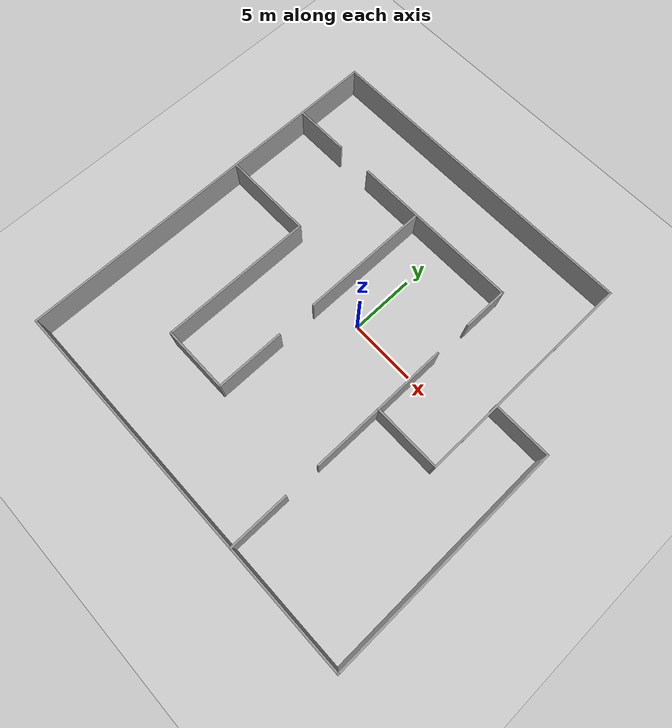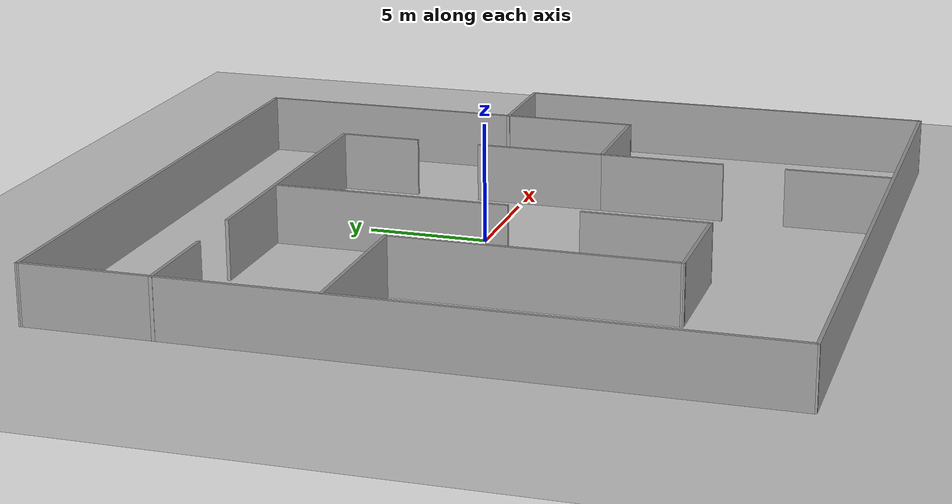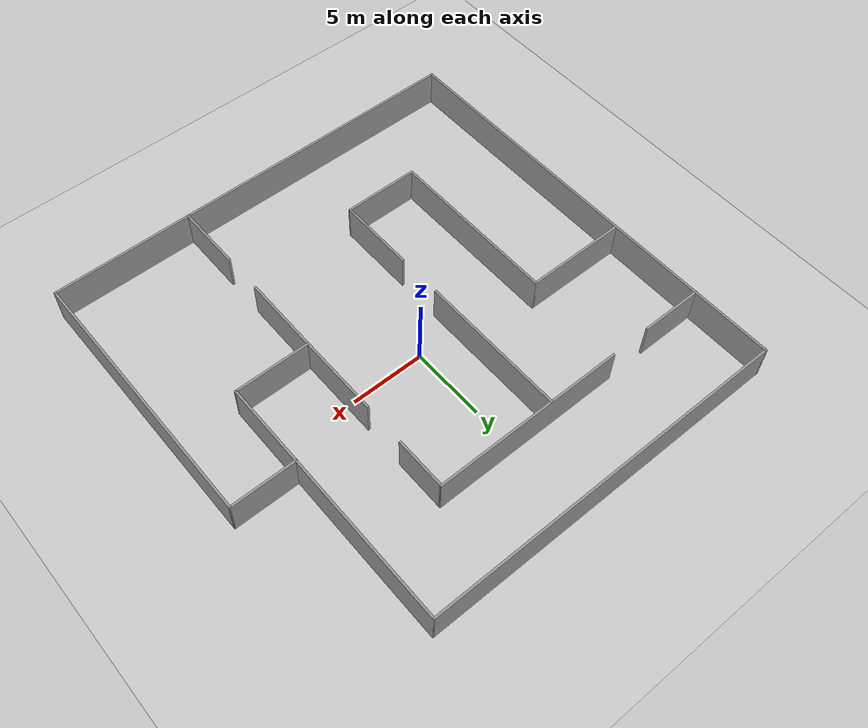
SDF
<sdf version="1.6">
 <world name="default">
  <light name="sun" type="directional">
   <pose>0 0 10 0 -0 0</pose>
   <diffuse>0.8 0.8 0.8 1</diffuse>
   <specular>0.1 0.1 0.1 1</specular>
   <attenuation>
    <range>1000</range>
    <constant>0.9</constant>
    <linear>0.01</linear>
    <quadratic>0.001</quadratic>
   </attenuation>
   <direction>-0.5 0.5 -1</direction>
  </light>
  <model name="ground_plane">
   <static>1</static>
   <link name="link">
    <collision name="collision">
     <geometry><plane><normal>0 0 1</normal><size>100 100</size></plane></geometry>
     <surface><friction><ode><mu>100</mu><mu2>50</mu2></ode></friction></surface>
    </collision>
    <visual name="visual">
     <cast_shadows>0</cast_shadows>
     <geometry><plane><normal>0 0 1</normal><size>100 100</size></plane></geometry>
     <material>
      <script><uri>file://media/materials/scripts/gazebo.material</uri><name>Gazebo/Grey</name></script>
     </material>
    </visual>
   </link>
  </model>
  <gravity>0 0 -9.8</gravity>
  <magnetic_field>6e-06 2.3e-05 -4.2e-05</magnetic_field>
  <atmosphere type="adiabatic"/>
  <physics name="default_physics" default="0" type="ode">
   <max_step_size>0.001</max_step_size>
   <real_time_factor>1</real_time_factor>
   <real_time_update_rate>1000</real_time_update_rate>
  </physics>
  <scene><ambient>0.4 0.4 0.4 1</ambient><background>0.7 0.7 0.7 1</background><shadows>1</shadows></scene>
  <spherical_coordinates>
   <surface_model>EARTH_WGS84</surface_model>
   <latitude_deg>0</latitude_deg>
   <longitude_deg>0</longitude_deg>
   <elevation>0</elevation>
   <heading_deg>0</heading_deg>
  </spherical_coordinates>
  <model name="Untitled">
   <pose>0.199023 -1.24183 0 0 -0 0</pose>
   <link name="Wall_0">
    <collision name="Wall_0_Collision">
     <geometry><box><size>25.1529 0.15 2.5</size></box></geometry>
     <pose>0 0 1.25 0 -0 0</pose>
    </collision>
    <visual name="Wall_0_Visual">
     <pose>0 0 1.25 0 -0 0</pose>
     <geometry><box><size>25.1529 0.15 2.5</size></box></geometry>
     <material>
      <script><uri>file://media/materials/scripts/gazebo.material</uri><name>Gazebo/Grey</name></script>
      <ambient>1 1 1 1</ambient>
     </material>
    </visual>
    <pose>-2.1715 14.78 0 0 0 -0.000316</pose>
   </link>
   <link name="Wall_10">
    <collision name="Wall_10_Collision">
     <geometry><box><size>29.49 0.15 2.5</size></box></geometry>
     <pose>0 0 1.25 0 -0 0</pose>
    </collision>
    <visual name="Wall_10_Visual">
     <pose>0 0 1.25 0 -0 0</pose>
     <geometry><box><size>29.49 0.15 2.5</size></box></geometry>
     <material>
      <script><uri>file://media/materials/scripts/gazebo.material</uri><name>Gazebo/Grey</name></script>
      <ambient>1 1 1 1</ambient>
     </material>
    </visual>
    <pose>0.010539 -14.7839 0 0 -0 0</pose>
   </link>
   <link name="Wall_11">
    <collision name="Wall_11_Collision">
     <geometry><box><size>18.2944 0.15 2.5</size></box></geometry>
     <pose>0 0 1.25 0 -0 0</pose>
    </collision>
    <visual name="Wall_11_Visual">
     <pose>0 0 1.25 0 -0 0</pose>
     <geometry><box><size>18.2944 0.15 2.5</size></box></geometry>
     <material>
      <script><uri>file://media/materials/scripts/gazebo.material</uri><name>Gazebo/Grey</name></script>
      <ambient>1 1 1 1</ambient>
     </material>
    </visual>
    <pose>14.6682 -5.71169 0 0 -0 1.57216</pose>
   </link>
   <link name="Wall_13">
    <collision name="Wall_13_Collision">
     <geometry><box><size>4.48616 0.15 2.5</size></box></geometry>
     <pose>0 0 1.25 0 -0 0</pose>
    </collision>
    <visual name="Wall_13_Visual">
     <pose>0 0 1.25 0 -0 0</pose>
     <geometry><box><size>4.48616 0.15 2.5</size></box></geometry>
     <material>
      <script><uri>file://media/materials/scripts/gazebo.material</uri><name>Gazebo/Grey</name></script>
      <ambient>1 1 1 1</ambient>
     </material>
    </visual>
    <pose>12.4878 3.36052 0 0 -0 3.14159</pose>
   </link>
   <link name="Wall_15">
    <collision name="Wall_15_Collision">
     <geometry><box><size>4.27968 0.15 2.5</size></box></geometry>
     <pose>0 0 1.25 0 -0 0</pose>
    </collision>
    <visual name="Wall_15_Visual">
     <pose>0 0 1.25 0 -0 0</pose>
     <geometry><box><size>4.27968 0.15 2.5</size></box></geometry>
     <material>
      <script><uri>file://media/materials/scripts/gazebo.material</uri><name>Gazebo/Grey</name></script>
      <ambient>1 1 1 1</ambient>
     </material>
    </visual>
    <pose>-12.6158 9.41308 0 0 -0 0</pose>
   </link>
   <link name="Wall_17">
    <collision name="Wall_17_Collision">
     <geometry><box><size>13.1509 0.15 2.5</size></box></geometry>
     <pose>0 0 1.25 0 -0 0</pose>
    </collision>
    <visual name="Wall_17_Visual">
     <pose>0 0 1.25 0 -0 0</pose>
     <geometry><box><size>13.1509 0.15 2.5</size></box></geometry>
     <material>
      <script><uri>file://media/materials/scripts/gazebo.material</uri><name>Gazebo/Grey</name></script>
      <ambient>1 1 1 1</ambient>
     </material>
    </visual>
    <pose>-1.20566 9.45896 0 0 -0 0.002353</pose>
   </link>
   <link name="Wall_18">
    <collision name="Wall_18_Collision">
     <geometry><box><size>3.51492 0.15 2.5</size></box></geometry>
     <pose>0 0 1.25 0 -0 0</pose>
    </collision>
    <visual name="Wall_18_Visual">
     <pose>0 0 1.25 0 -0 0</pose>
     <geometry><box><size>3.51492 0.15 2.5</size></box></geometry>
     <material>
      <script><uri>file://media/materials/scripts/gazebo.material</uri><name>Gazebo/Grey</name></script>
      <ambient>1 1 1 1</ambient>
     </material>
    </visual>
    <pose>5.29477 7.76121 0 0 0 -1.5708</pose>
   </link>
   <link name="Wall_2">
    <collision name="Wall_2_Collision">
     <geometry><box><size>17.2353 0.15 2.5</size></box></geometry>
     <pose>0 0 1.25 0 -0 0</pose>
    </collision>
    <visual name="Wall_2_Visual">
     <pose>0 0 1.25 0 -0 0</pose>
     <geometry><box><size>17.2353 0.15 2.5</size></box></geometry>
     <material>
      <script><uri>file://media/materials/scripts/gazebo.material</uri><name>Gazebo/Grey</name></script>
      <ambient>1 1 1 1</ambient>
     </material>
    </visual>
    <pose>10.3357 6.2334 0 0 0 -1.57013</pose>
   </link>
   <link name="Wall_20">
    <collision name="Wall_20_Collision">
     <geometry><box><size>6.9504 0.15 2.5</size></box></geometry>
     <pose>0 0 1.25 0 -0 0</pose>
    </collision>
    <visual name="Wall_20_Visual">
     <pose>0 0 1.25 0 -0 0</pose>
     <geometry><box><size>6.9504 0.15 2.5</size></box></geometry>
     <material>
      <script><uri>file://media/materials/scripts/gazebo.material</uri><name>Gazebo/Grey</name></script>
      <ambient>1 1 1 1</ambient>
     </material>
    </visual>
    <pose>-11.2319 2.85571 0 0 -0 0</pose>
   </link>
   <link name="Wall_21">
    <collision name="Wall_21_Collision">
     <geometry><box><size>11.75 0.15 2.5</size></box></geometry>
     <pose>0 0 1.25 0 -0 0</pose>
    </collision>
    <visual name="Wall_21_Visual">
     <pose>0 0 1.25 0 -0 0</pose>
     <geometry><box><size>11.75 0.15 2.5</size></box></geometry>
     <material>
      <script><uri>file://media/materials/scripts/gazebo.material</uri><name>Gazebo/Grey</name></script>
      <ambient>1 1 1 1</ambient>
     </material>
    </visual>
    <pose>-7.83172 -2.94429 0 0 0 -1.5708</pose>
   </link>
   <link name="Wall_23">
    <collision name="Wall_23_Collision">
     <geometry><box><size>5.16664 0.15 2.5</size></box></geometry>
     <pose>0 0 1.25 0 -0 0</pose>
    </collision>
    <visual name="Wall_23_Visual">
     <pose>0 0 1.25 0 -0 0</pose>
     <geometry><box><size>5.16664 0.15 2.5</size></box></geometry>
     <material>
      <script><uri>file://media/materials/scripts/gazebo.material</uri><name>Gazebo/Grey</name></script>
      <ambient>1 1 1 1</ambient>
     </material>
    </visual>
    <pose>-5.32344 -8.73957 0 0 -0 0.001881</pose>
   </link>
   <link name="Wall_24">
    <collision name="Wall_24_Collision">
     <geometry><box><size>5.31919 0.15 2.5</size></box></geometry>
     <pose>0 0 1.25 0 -0 0</pose>
    </collision>
    <visual name="Wall_24_Visual">
     <pose>0 0 1.25 0 -0 0</pose>
     <geometry><box><size>5.31919 0.15 2.5</size></box></geometry>
     <material>
      <script><uri>file://media/materials/scripts/gazebo.material</uri><name>Gazebo/Grey</name></script>
      <ambient>1 1 1 1</ambient>
     </material>
    </visual>
    <pose>-2.81517 -6.15026 0 0 -0 1.5708</pose>
   </link>
   <link name="Wall_26">
    <collision name="Wall_26_Collision">
     <geometry><box><size>10.0453 0.15 2.5</size></box></geometry>
     <pose>0 0 1.25 0 -0 0</pose>
    </collision>
    <visual name="Wall_26_Visual">
     <pose>0 0 1.25 0 -0 0</pose>
     <geometry><box><size>10.0453 0.15 2.5</size></box></geometry>
     <material>
      <script><uri>file://media/materials/scripts/gazebo.material</uri><name>Gazebo/Grey</name></script>
      <ambient>1 1 1 1</ambient>
     </material>
    </visual>
    <pose>-2.8178 4.4959 0 0 -0 1.5708</pose>
   </link>
   <link name="Wall_29">
    <collision name="Wall_29_Collision">
     <geometry><box><size>4.5951 0.15 2.5</size></box></geometry>
     <pose>0 0 1.25 0 -0 0</pose>
    </collision>
    <visual name="Wall_29_Visual">
     <pose>0 0 1.25 0 -0 0</pose>
     <geometry><box><size>4.5951 0.15 2.5</size></box></geometry>
     <material>
      <script><uri>file://media/materials/scripts/gazebo.material</uri><name>Gazebo/Grey</name></script>
      <ambient>1 1 1 1</ambient>
     </material>
    </visual>
    <pose>5.27698 -12.5589 0 0 -0 1.5708</pose>
   </link>
   <link name="Wall_31">
    <collision name="Wall_31_Collision">
     <geometry><box><size>5.38875 0.15 2.5</size></box></geometry>
     <pose>0 0 1.25 0 -0 0</pose>
    </collision>
    <visual name="Wall_31_Visual">
     <pose>0 0 1.25 0 -0 0</pose>
     <geometry><box><size>5.38875 0.15 2.5</size></box></geometry>
     <material>
      <script><uri>file://media/materials/scripts/gazebo.material</uri><name>Gazebo/Grey</name></script>
      <ambient>1 1 1 1</ambient>
     </material>
    </visual>
    <pose>5.28325 -4.92862 0 0 -0 1.5677</pose>
   </link>
   <link name="Wall_4">
    <collision name="Wall_4_Collision">
     <geometry><box><size>5.2 0.15 2.5</size></box></geometry>
     <pose>0 0 1.25 0 -0 0</pose>
    </collision>
    <visual name="Wall_4_Visual">
     <pose>0 0 1.25 0 -0 0</pose>
     <geometry><box><size>5.2 0.15 2.5</size></box></geometry>
     <material>
      <script><uri>file://media/materials/scripts/gazebo.material</uri><name>Gazebo/Grey</name></script>
      <ambient>1 1 1 1</ambient>
     </material>
    </visual>
    <pose>7.81637 -2.30925 0 0 -0 3.14159</pose>
   </link>
   <link name="Wall_6">
    <collision name="Wall_6_Collision">
     <geometry><box><size>5.6249 0.15 2.5</size></box></geometry>
     <pose>0 0 1.25 0 -0 0</pose>
    </collision>
    <visual name="Wall_6_Visual">
     <pose>0 0 1.25 0 -0 0</pose>
     <geometry><box><size>5.6249 0.15 2.5</size></box></geometry>
     <material>
      <script><uri>file://media/materials/scripts/gazebo.material</uri><name>Gazebo/Grey</name></script>
      <ambient>1 1 1 1</ambient>
     </material>
    </visual>
    <pose>5.28107 0.428179 0 0 -0 1.57456</pose>
   </link>
   <link name="Wall_8">
    <collision name="Wall_8_Collision">
     <geometry><box><size>29.7179 0.15 2.5</size></box></geometry>
     <pose>0 0 1.25 0 -0 0</pose>
    </collision>
    <visual name="Wall_8_Visual">
     <pose>0 0 1.25 0 -0 0</pose>
     <geometry><box><size>29.7179 0.15 2.5</size></box></geometry>
     <material>
      <script><uri>file://media/materials/scripts/gazebo.material</uri><name>Gazebo/Grey</name></script>
      <ambient>1 1 1 1</ambient>
     </material>
    </visual>
    <pose>-14.6662 3.3e-05 0 0 0 -1.57034</pose>
   </link>
   <static>1</static>
  </model>
 </world>
</sdf>
